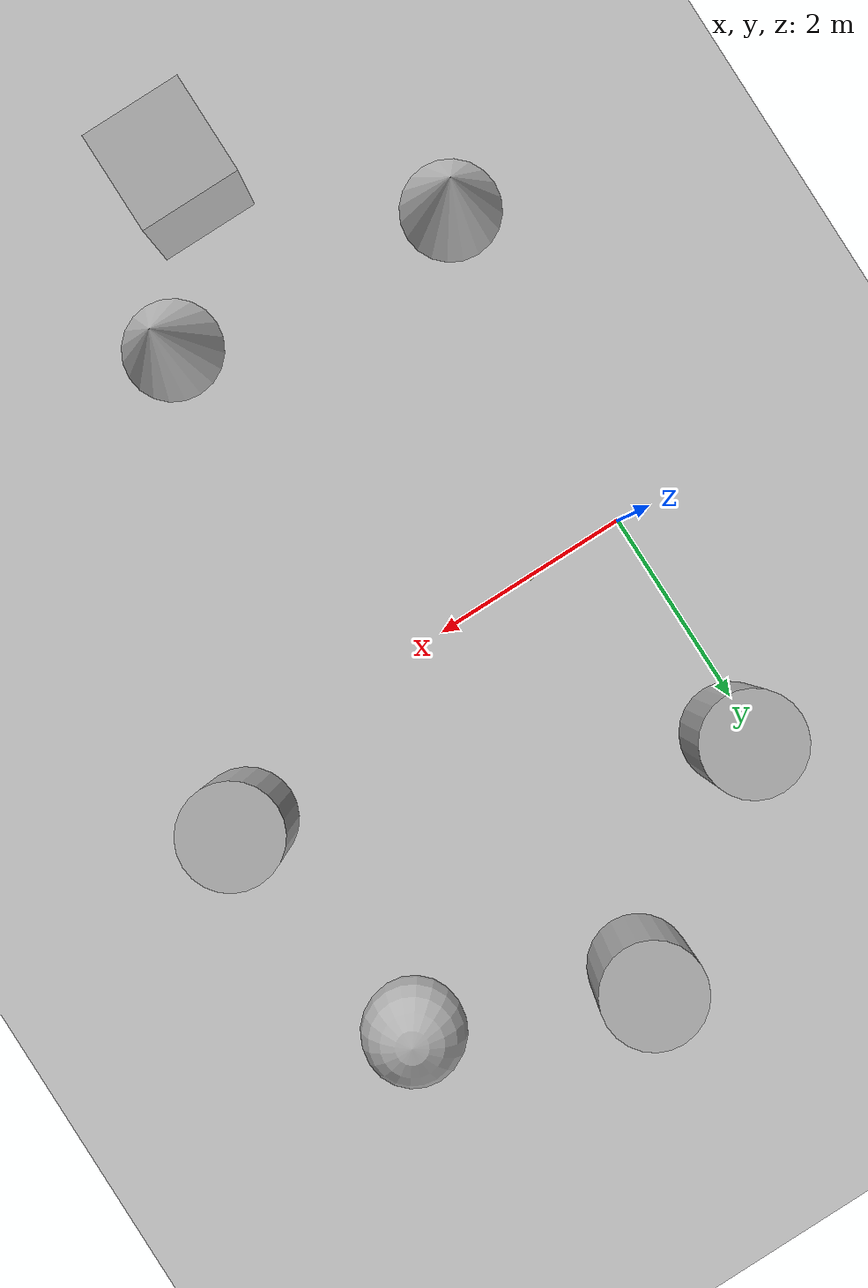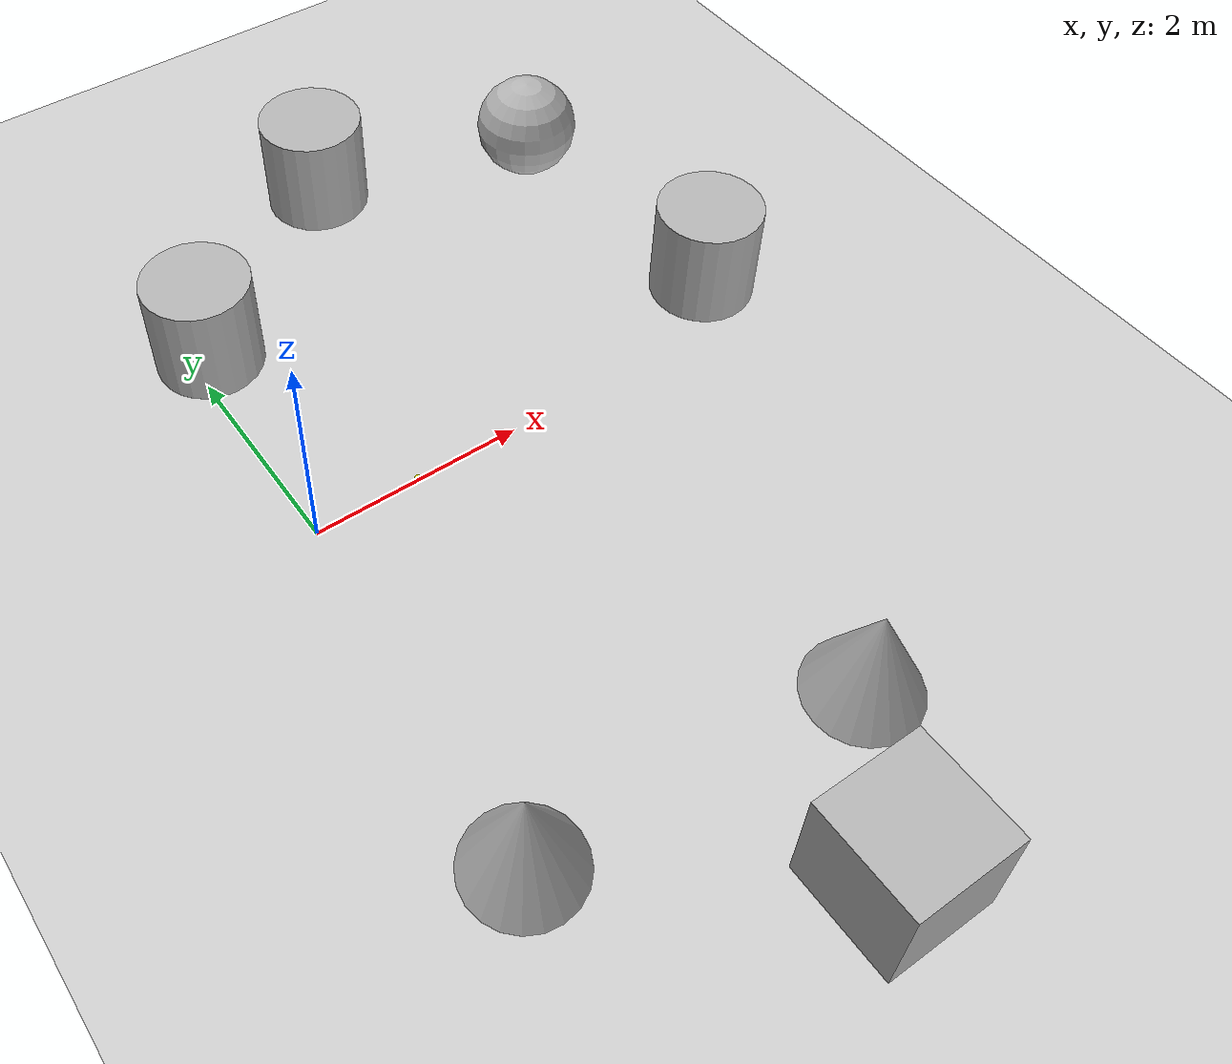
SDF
<sdf version='1.10'>
  <world name='empty'>
    <physics name='1ms' type='ignored'>
      <max_step_size>0.001</max_step_size>
      <real_time_factor>1</real_time_factor>
      <real_time_update_rate>1000</real_time_update_rate>
    </physics>
    <plugin name='gz::sim::systems::Physics' filename='gz-sim-physics-system'/>
    <plugin name='gz::sim::systems::UserCommands' filename='gz-sim-user-commands-system'/>
    <plugin name='gz::sim::systems::SceneBroadcaster' filename='gz-sim-scene-broadcaster-system'/>
    <plugin name='gz::sim::systems::Sensors' filename='gz-sim-sensors-system'>
      <render_engine>ogre2</render_engine>
    </plugin>
    <plugin name='gz::sim::systems::Contact' filename='gz-sim-contact-system'/>
    <gravity>0 0 -9.8000000000000007</gravity>
    <magnetic_field>5.5644999999999998e-06 2.2875799999999999e-05 -4.2388400000000002e-05</magnetic_field>
    <atmosphere type='adiabatic'/>
    <scene>
      <ambient>0.400000006 0.400000006 0.400000006 1</ambient>
      <background>0.699999988 0.699999988 0.699999988 1</background>
      <shadows>true</shadows>
    </scene>
    <model name='ground_plane'>
      <static>true</static>
      <link name='link'>
        <collision name='collision'>
          <geometry>
            <plane>
              <normal>0 0 1</normal>
              <size>100 100</size>
            </plane>
          </geometry>
          <surface>
            <friction>
              <ode/>
            </friction>
            <bounce/>
            <contact/>
          </surface>
        </collision>
        <visual name='visual'>
          <geometry>
            <plane>
              <normal>0 0 1</normal>
              <size>100 100</size>
            </plane>
          </geometry>
          <material>
            <ambient>0.800000012 0.800000012 0.800000012 1</ambient>
            <diffuse>0.800000012 0.800000012 0.800000012 1</diffuse>
            <specular>0.800000012 0.800000012 0.800000012 1</specular>
          </material>
        </visual>
        <pose>0 0 0 0 0 0</pose>
        <inertial>
          <pose>0 0 0 0 0 0</pose>
          <mass>1</mass>
          <inertia>
            <ixx>1</ixx>
            <ixy>0</ixy>
            <ixz>0</ixz>
            <iyy>1</iyy>
            <iyz>0</iyz>
            <izz>1</izz>
          </inertia>
        </inertial>
        <enable_wind>false</enable_wind>
      </link>
      <pose>0 0 0 0 0 0</pose>
      <self_collide>false</self_collide>
    </model>
    <model name='box'>
      <pose>1.8029219467110664 -4.9402323017846799 0.49999999980497606 1.0048033485058014e-21 -2.4640853465547739e-21 -3.9210766489770922e-22</pose>
      <link name='box_link'>
        <inertial>
          <inertia>
            <ixx>0.16666</ixx>
            <ixy>0</ixy>
            <ixz>0</ixz>
            <iyy>0.16666</iyy>
            <iyz>0</iyz>
            <izz>0.16666</izz>
          </inertia>
          <mass>1</mass>
          <pose>0 0 0 0 0 0</pose>
        </inertial>
        <collision name='box_collision'>
          <geometry>
            <box>
              <size>1 1 1</size>
            </box>
          </geometry>
          <surface>
            <friction>
              <ode/>
            </friction>
            <bounce/>
            <contact/>
          </surface>
        </collision>
        <visual name='box_visual'>
          <geometry>
            <box>
              <size>1 1 1</size>
            </box>
          </geometry>
          <material>
            <ambient>0.300000012 0.300000012 0.300000012 1</ambient>
            <diffuse>0.699999988 0.699999988 0.699999988 1</diffuse>
            <specular>1 1 1 1</specular>
          </material>
        </visual>
        <pose>0 0 0 0 0 0</pose>
        <enable_wind>false</enable_wind>
      </link>
      <static>false</static>
      <self_collide>false</self_collide>
    </model>
    <model name='cylinder'>
      <pose>2.1278173043812618 3.7029515542140965 0.49999943207967634 2.5210160480119534e-20 1.5537065464925922e-20 -8.8626556358186986e-21</pose>
      <link name='cylinder_link'>
        <inertial>
          <inertia>
            <ixx>0.14580000000000001</ixx>
            <ixy>0</ixy>
            <ixz>0</ixz>
            <iyy>0.14580000000000001</iyy>
            <iyz>0</iyz>
            <izz>0.125</izz>
          </inertia>
          <mass>1</mass>
          <pose>0 0 0 0 0 0</pose>
        </inertial>
        <collision name='cylinder_collision'>
          <geometry>
            <cylinder>
              <radius>0.5</radius>
              <length>1</length>
            </cylinder>
          </geometry>
          <surface>
            <friction>
              <ode/>
            </friction>
            <bounce/>
            <contact/>
          </surface>
        </collision>
        <visual name='cylinder_visual'>
          <geometry>
            <cylinder>
              <radius>0.5</radius>
              <length>1</length>
            </cylinder>
          </geometry>
          <material>
            <ambient>0.300000012 0.300000012 0.300000012 1</ambient>
            <diffuse>0.699999988 0.699999988 0.699999988 1</diffuse>
            <specular>1 1 1 1</specular>
          </material>
        </visual>
        <pose>0 0 0 0 0 0</pose>
        <enable_wind>false</enable_wind>
      </link>
      <static>false</static>
      <self_collide>false</self_collide>
    </model>
    <model name='cylinder_0'>
      <pose>0.18329481867336472 2.3005820005558681 0.49999942638036005 1.8235055192889019e-19 -1.8202769896917404e-19 -2.7624890440785783e-20</pose>
      <link name='cylinder_link'>
        <inertial>
          <inertia>
            <ixx>0.14580000000000001</ixx>
            <ixy>0</ixy>
            <ixz>0</ixz>
            <iyy>0.14580000000000001</iyy>
            <iyz>0</iyz>
            <izz>0.125</izz>
          </inertia>
          <mass>1</mass>
          <pose>0 0 0 0 0 0</pose>
        </inertial>
        <collision name='cylinder_collision'>
          <geometry>
            <cylinder>
              <radius>0.5</radius>
              <length>1</length>
            </cylinder>
          </geometry>
          <surface>
            <friction>
              <ode/>
            </friction>
            <bounce/>
            <contact/>
          </surface>
        </collision>
        <visual name='cylinder_visual'>
          <geometry>
            <cylinder>
              <radius>0.5</radius>
              <length>1</length>
            </cylinder>
          </geometry>
          <material>
            <ambient>0.300000012 0.300000012 0.300000012 1</ambient>
            <diffuse>0.699999988 0.699999988 0.699999988 1</diffuse>
            <specular>1 1 1 1</specular>
          </material>
        </visual>
        <pose>0 0 0 0 0 0</pose>
        <enable_wind>false</enable_wind>
      </link>
      <static>false</static>
      <self_collide>false</self_collide>
    </model>
    <model name='cone'>
      <pose>-0.25108657215578273 -3.3757370927113595 0.49999999993296756 5.2541471503228405e-17 -7.7132841033694056e-10 -2.8937183272912105e-22</pose>
      <link name='cone_link'>
        <inertial>
          <inertia>
            <ixx>0.074999999999999997</ixx>
            <ixy>0</ixy>
            <ixz>0</ixz>
            <iyy>0.074999999999999997</iyy>
            <iyz>0</iyz>
            <izz>0.074999999999999997</izz>
          </inertia>
          <mass>1</mass>
          <pose>0 0 0 0 0 0</pose>
        </inertial>
        <collision name='cone_collision'>
          <geometry>
            <cone>
              <radius>0.5</radius>
              <length>1</length>
            </cone>
          </geometry>
          <surface>
            <friction>
              <ode/>
            </friction>
            <bounce/>
            <contact/>
          </surface>
        </collision>
        <visual name='cone_visual'>
          <geometry>
            <cone>
              <radius>0.5</radius>
              <length>1</length>
            </cone>
          </geometry>
          <material>
            <ambient>0.300000012 0.300000012 0.300000012 1</ambient>
            <diffuse>0.699999988 0.699999988 0.699999988 1</diffuse>
            <specular>1 1 1 1</specular>
          </material>
        </visual>
        <pose>0 0 0 0 0 0</pose>
        <enable_wind>false</enable_wind>
      </link>
      <static>false</static>
      <self_collide>false</self_collide>
    </model>
    <model name='cone_0'>
      <pose>2.7200433295487465 -3.679770087113956 0.49999999993296756 5.2549771432367499e-17 -7.7132841035918737e-10 -1.0169567166225364e-22</pose>
      <link name='cone_link'>
        <inertial>
          <inertia>
            <ixx>0.074999999999999997</ixx>
            <ixy>0</ixy>
            <ixz>0</ixz>
            <iyy>0.074999999999999997</iyy>
            <iyz>0</iyz>
            <izz>0.074999999999999997</izz>
          </inertia>
          <mass>1</mass>
          <pose>0 0 0 0 0 0</pose>
        </inertial>
        <collision name='cone_collision'>
          <geometry>
            <cone>
              <radius>0.5</radius>
              <length>1</length>
            </cone>
          </geometry>
          <surface>
            <friction>
              <ode/>
            </friction>
            <bounce/>
            <contact/>
          </surface>
        </collision>
        <visual name='cone_visual'>
          <geometry>
            <cone>
              <radius>0.5</radius>
              <length>1</length>
            </cone>
          </geometry>
          <material>
            <ambient>0.300000012 0.300000012 0.300000012 1</ambient>
            <diffuse>0.699999988 0.699999988 0.699999988 1</diffuse>
            <specular>1 1 1 1</specular>
          </material>
        </visual>
        <pose>0 0 0 0 0 0</pose>
        <enable_wind>false</enable_wind>
      </link>
      <static>false</static>
      <self_collide>false</self_collide>
    </model>
    <model name='sphere'>
      <pose>4.1859899539879812 2.9479250483390715 0.499999999902001 0 0 0</pose>
      <link name='sphere_link'>
        <inertial>
          <inertia>
            <ixx>0.10000000000000001</ixx>
            <ixy>0</ixy>
            <ixz>0</ixz>
            <iyy>0.10000000000000001</iyy>
            <iyz>0</iyz>
            <izz>0.10000000000000001</izz>
          </inertia>
          <mass>1</mass>
          <pose>0 0 0 0 0 0</pose>
        </inertial>
        <collision name='sphere_collision'>
          <geometry>
            <sphere>
              <radius>0.5</radius>
            </sphere>
          </geometry>
          <surface>
            <friction>
              <ode/>
            </friction>
            <bounce/>
            <contact/>
          </surface>
        </collision>
        <visual name='sphere_visual'>
          <geometry>
            <sphere>
              <radius>0.5</radius>
            </sphere>
          </geometry>
          <material>
            <ambient>0.300000012 0.300000012 0.300000012 1</ambient>
            <diffuse>0.699999988 0.699999988 0.699999988 1</diffuse>
            <specular>1 1 1 1</specular>
          </material>
        </visual>
        <pose>0 0 0 0 0 0</pose>
        <enable_wind>false</enable_wind>
      </link>
      <static>false</static>
      <self_collide>false</self_collide>
    </model>
    <model name='cylinder_1'>
      <pose>4.5356350059915638 0.49571306750744387 0.49999942638036005 -2.5899055752266769e-19 2.8396452971414566e-19 -6.8289541229272541e-21</pose>
      <link name='cylinder_link'>
        <inertial>
          <inertia>
            <ixx>0.14580000000000001</ixx>
            <ixy>0</ixy>
            <ixz>0</ixz>
            <iyy>0.14580000000000001</iyy>
            <iyz>0</iyz>
            <izz>0.125</izz>
          </inertia>
          <mass>1</mass>
          <pose>0 0 0 0 0 0</pose>
        </inertial>
        <collision name='cylinder_collision'>
          <geometry>
            <cylinder>
              <radius>0.5</radius>
              <length>1</length>
            </cylinder>
          </geometry>
          <surface>
            <friction>
              <ode/>
            </friction>
            <bounce/>
            <contact/>
          </surface>
        </collision>
        <visual name='cylinder_visual'>
          <geometry>
            <cylinder>
              <radius>0.5</radius>
              <length>1</length>
            </cylinder>
          </geometry>
          <material>
            <ambient>0.300000012 0.300000012 0.300000012 1</ambient>
            <diffuse>0.699999988 0.699999988 0.699999988 1</diffuse>
            <specular>1 1 1 1</specular>
          </material>
        </visual>
        <pose>0 0 0 0 0 0</pose>
        <enable_wind>false</enable_wind>
      </link>
      <static>false</static>
      <self_collide>false</self_collide>
    </model>
      <!-- Tennis Ball Model -->
    <model name="tennis_ball">
      <pose>1 0 0.033 0 0 0</pose> <!-- Placed at (1, 0, 0) -->
      <static>false</static>
      <link name="link">
        <collision name="collision">
          <geometry>
            <sphere>
              <radius>0.033</radius> <!-- Tennis ball radius is approximately 33 mm -->
            </sphere>
          </geometry>
        </collision>
        <visual name="visual">
          <geometry>
            <sphere>
              <radius>0.033</radius>
            </sphere>
          </geometry>
          <material>
            <ambient>0.8 0.8 0.0 1.0</ambient> <!-- Yellow-ish color for the tennis ball -->
            <diffuse>0.8 0.8 0.0 1.0</diffuse>
            <specular>0.5 0.5 0.5 1.0</specular>
          </material>
        </visual>
      </link>
    </model>

    <light name='sun' type='directional'>
      <pose>0 0 10 0 0 0</pose>
      <cast_shadows>true</cast_shadows>
      <intensity>1</intensity>
      <direction>-0.5 0.10000000000000001 -0.90000000000000002</direction>
      <diffuse>0.800000012 0.800000012 0.800000012 1</diffuse>
      <specular>0.200000003 0.200000003 0.200000003 1</specular>
      <attenuation>
        <range>1000</range>
        <linear>0.0099999997764825821</linear>
        <constant>0.89999997615814209</constant>
        <quadratic>0.0010000000474974513</quadratic>
      </attenuation>
      <spot>
        <inner_angle>0</inner_angle>
        <outer_angle>0</outer_angle>
        <falloff>0</falloff>
      </spot>
    </light>
  </world>
</sdf>
